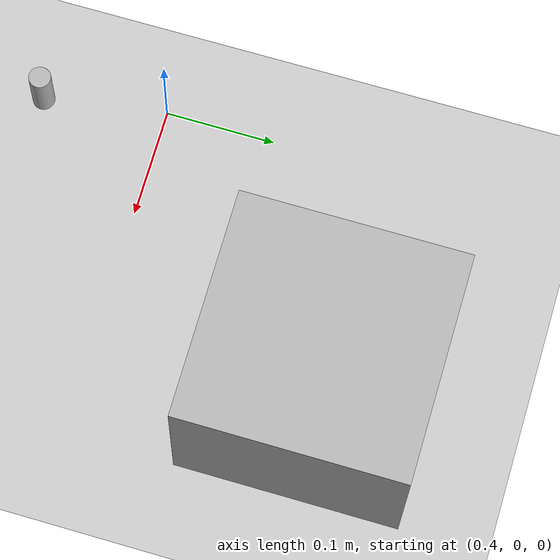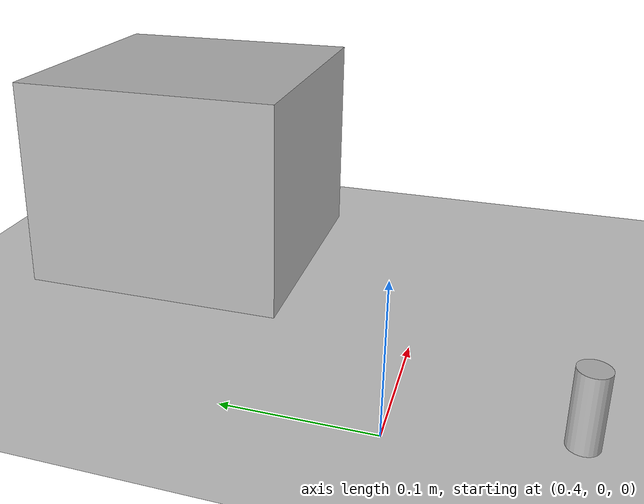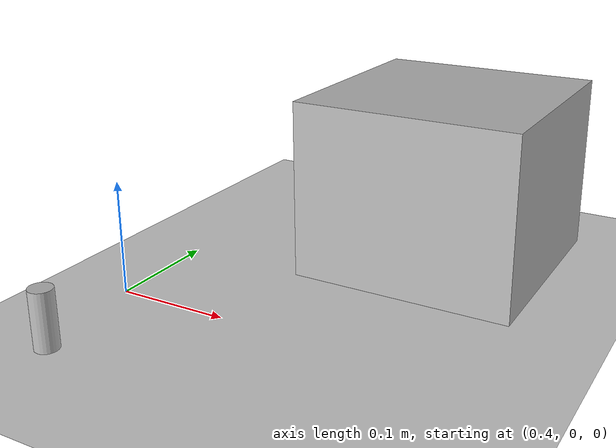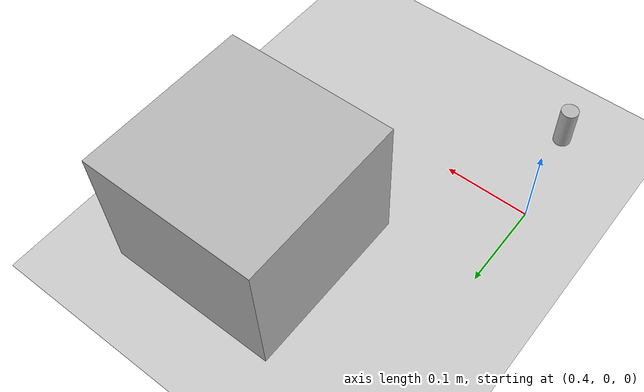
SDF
<?xml version="1.0"?>
<sdf version="1.9">
  <world name="industrial_pick_place">
    <gravity>0 0 -9.81</gravity>
    <plugin filename="gz-sim-physics-system" name="gz::sim::systems::Physics"/>
    <plugin filename="gz-sim-user-commands-system" name="gz::sim::systems::UserCommands"/>
    <plugin filename="gz-sim-scene-broadcaster-system" name="gz::sim::systems::SceneBroadcaster"/>
    <model name="ground">
      <static>true</static>
      <link name="link">
        <collision name="collision"><geometry><plane><normal>0 0 1</normal><size>10 10</size></plane></geometry></collision>
        <visual name="visual"><geometry><plane><normal>0 0 1</normal><size>10 10</size></plane></geometry></visual>
      </link>
    </model>
    <model name="silver_screw">
      <pose>0.42 -0.11 0.03 0 0 0</pose>
      <link name="link"><inertial><mass>0.01</mass></inertial><collision name="collision"><geometry><cylinder><radius>0.01</radius><length>0.05</length></cylinder></geometry></collision><visual name="visual"><geometry><cylinder><radius>0.01</radius><length>0.05</length></cylinder></geometry></visual></link>
    </model>
    <model name="bin_3">
      <pose>0.61 0.20 0.08 0 0 0</pose>
      <link name="link"><inertial><mass>0.2</mass></inertial><collision name="collision"><geometry><box><size>0.2 0.2 0.16</size></box></geometry></collision><visual name="visual"><geometry><box><size>0.2 0.2 0.16</size></box></geometry></visual></link>
    </model>
  </world>
</sdf>
